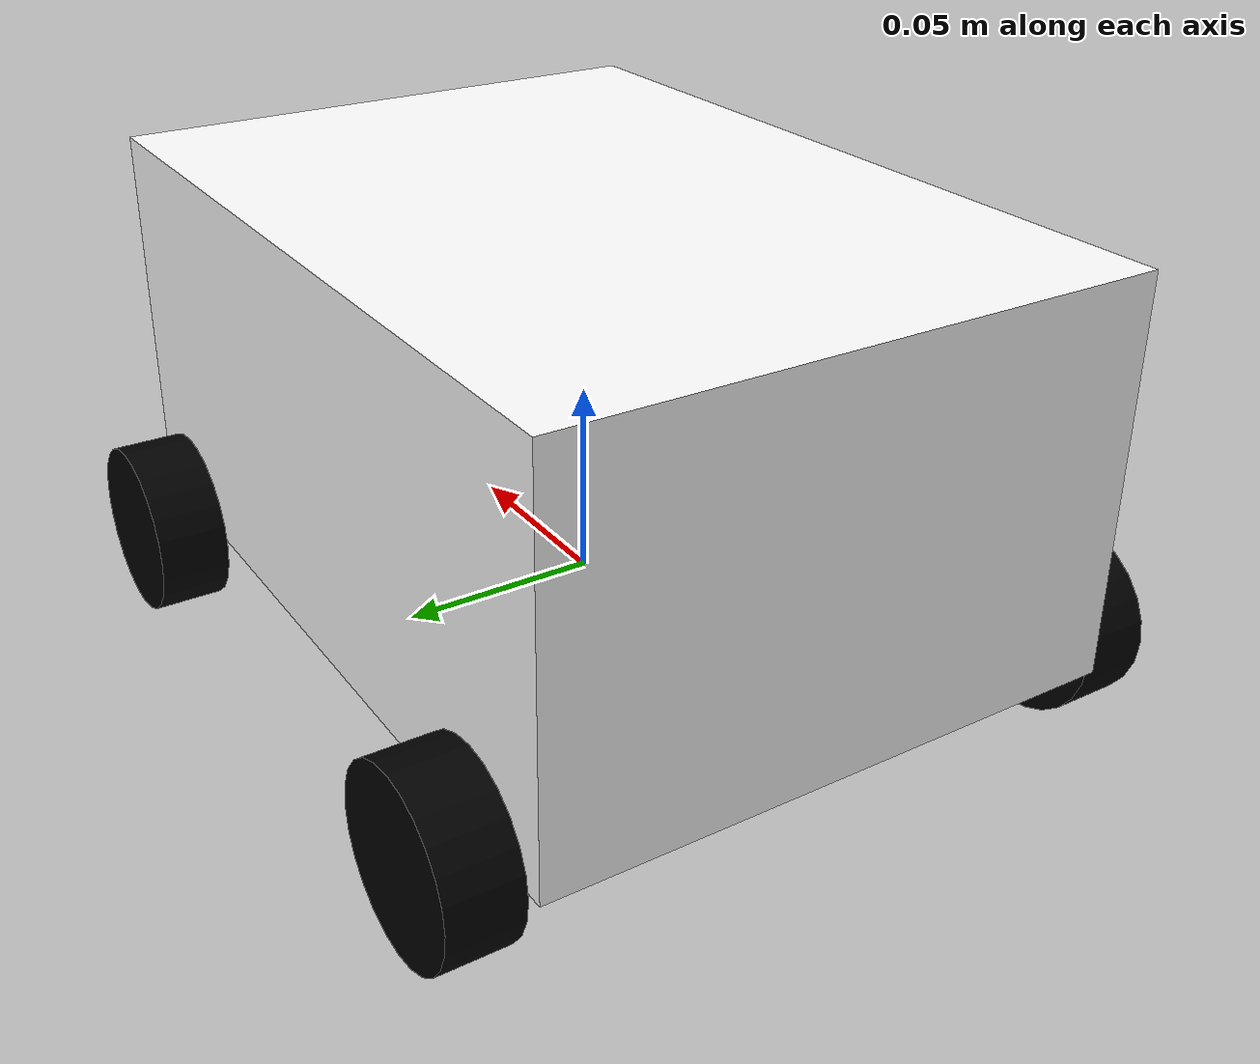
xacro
<?xml version="1.0"?>
<robot xmlns:xacro="http://www.ros.org/wiki/xacro">

    <xacro:include filename="inertial_macros.xacro" />

    <material name="white">
        <color rgba="1 1 1 1"/>
    </material>

    <material name="orange">
        <color rgba="1 0.3 0.1 1"/>
    </material>

    <material name="blue">
        <color rgba="0.2 0.2 1 1"/>
    </material>

    <material name="black">
        <color rgba="0 0 0 1"/>
    </material>

    <material name="red">
        <color rgba="1 0 0 1"/>
    </material>

    <!-- Base Link -->

    <link name="base_link">
    </link>

    <!-- BASE_FOOTPRINT LINK -->

    <joint name="base_footprint_joint" type="fixed">
        <parent link="base_link"/>
        <child link="base_footprint"/>
        <origin xyz="0 0 0" rpy="0 0 0"/>
    </joint>

    <link name="base_footprint">
    </link>

    <!-- Chassis Link -->

    <joint name="chassis_joint" type="fixed">
        <parent link="base_link"/>
        <child link="chassis"/>
        <origin xyz="0 0 0"/>
    </joint>

    <link name="chassis">
        <visual>
            <origin xyz="0 0 0.05" rpy="0 0 0"/>
            <geometry>
                <box size="0.21 0.15 0.10"/>
            </geometry>
            <material name="white"/>
        </visual>
        <collision>
            <origin xyz="0 0 0.05" rpy="0 0 0"/>
            <geometry>
                <box size="0.21 0.15 0.10"/>
            </geometry>
        </collision>
        <xacro:inertial_box mass="0.3" x="0.21" y="0.15" z="0.10">
            <origin xyz="0.15 0 0.05" rpy="0 0 0"/>
        </xacro:inertial_box>
    </link>

    <gazebo reference="chassis">
        <material>Gazebo/White</material>
        <mu1>0.2</mu1>
        <mu2>0.2</mu2>
    </gazebo>

    <!-- LEFT FRONT WHEEL -->

    <joint name="left_front_wheel_joint" type="continuous">
        <parent link="base_link"/>
        <child link="left_front_wheel"/>
        <origin xyz="-0.08 -0.085 0" rpy="${pi/2} 0 0"/>
        <axis xyz="0 0 1"/>
    </joint>

    <link name="left_front_wheel" type="revolute">
        <visual>
            <geometry>
                <cylinder length="0.018" radius="0.0225" />
            </geometry>
            <material name="black"/>
        </visual>
        <collision>
            <geometry>
                <cylinder radius="0.0225" length="0.018" />
            </geometry>
        </collision>
        <xacro:inertial_cylinder mass="0.1" length="0.018" radius="0.0225">
            <origin xyz="0 0 0" rpy="0 0 0"/>
        </xacro:inertial_cylinder>
    </link>

    <gazebo reference="left_front_wheel">
        <material>Gazebo/Black</material>
        <mu1>0.2</mu1>
        <mu2>0.2</mu2>
    </gazebo>

    <!-- LEFT REAR WHEEL -->

    <joint name="left_rear_wheel_joint" type="continuous">
        <parent link="base_link"/>
        <child link="left_rear_wheel"/>
        <origin xyz="0.08 -0.085 0" rpy="${pi/2} 0 0"/>
        <axis xyz="0 0 1"/>
    </joint>

    <link name="left_rear_wheel" type="revolute">
        <visual>
            <geometry>
                <cylinder length="0.018" radius="0.0225" />
            </geometry>
            <material name="black"/>
        </visual>
        <collision>
            <geometry>
                <cylinder radius="0.0225" length="0.018" />
            </geometry>
        </collision>
        <xacro:inertial_cylinder mass="0.1" length="0.018" radius="0.0225">
            <origin xyz="0 0 0" rpy="0 0 0"/>
        </xacro:inertial_cylinder>
    </link>

    <gazebo reference="left_rear_wheel">
        <material>Gazebo/Black</material>
        <mu1>0.2</mu1>
        <mu2>0.2</mu2>
    </gazebo>

    <!-- RIGHT FRONT WHEEL -->

    <joint name="right_front_wheel_joint" type="continuous">
        <parent link="base_link"/>
        <child link="right_front_wheel"/>
        <origin xyz="-0.08 0.085 0" rpy="${pi/2} 0 0"/>
        <axis xyz="0 0 1"/>
    </joint>

    <link name="right_front_wheel" type="revolute">
        <visual>
            <geometry>
                <cylinder length="0.018" radius="0.0225" />
            </geometry>
            <material name="black"/>
        </visual>
        <collision>
            <geometry>
                <cylinder radius="0.0225" length="0.018" />
            </geometry>
        </collision>
        <xacro:inertial_cylinder mass="0.1" length="0.018" radius="0.0225">
            <origin xyz="0 0 0" rpy="0 0 0"/>
        </xacro:inertial_cylinder>
    </link>

    <gazebo reference="right_front_wheel">
        <material>Gazebo/Black</material>
        <mu1>0.2</mu1>
        <mu2>0.2</mu2>
    </gazebo>

    <!-- RIGHT REAR WHEEL -->

    <joint name="right_rear_wheel_joint" type="continuous">
        <parent link="base_link"/>
        <child link="right_rear_wheel"/>
        <origin xyz="0.08 0.085 0" rpy="${pi/2} 0 0"/>
        <axis xyz="0 0 1"/>
    </joint>

    <link name="right_rear_wheel" type="revolute">
        <visual>
            <geometry>
                <cylinder length="0.018" radius="0.0225" />
            </geometry>
            <material name="black"/>
        </visual>
        <collision>
            <geometry>
                <cylinder radius="0.0225" length="0.018" />
            </geometry>
        </collision>
        <xacro:inertial_cylinder mass="0.1" length="0.018" radius="0.0225">
            <origin xyz="0 0 0" rpy="0 0 0"/>
        </xacro:inertial_cylinder>
    </link>

    <gazebo reference="right_rear_wheel">
        <material>Gazebo/Black</material>
        <mu1>0.2</mu1>
        <mu2>0.2</mu2>
    </gazebo>

</robot>
